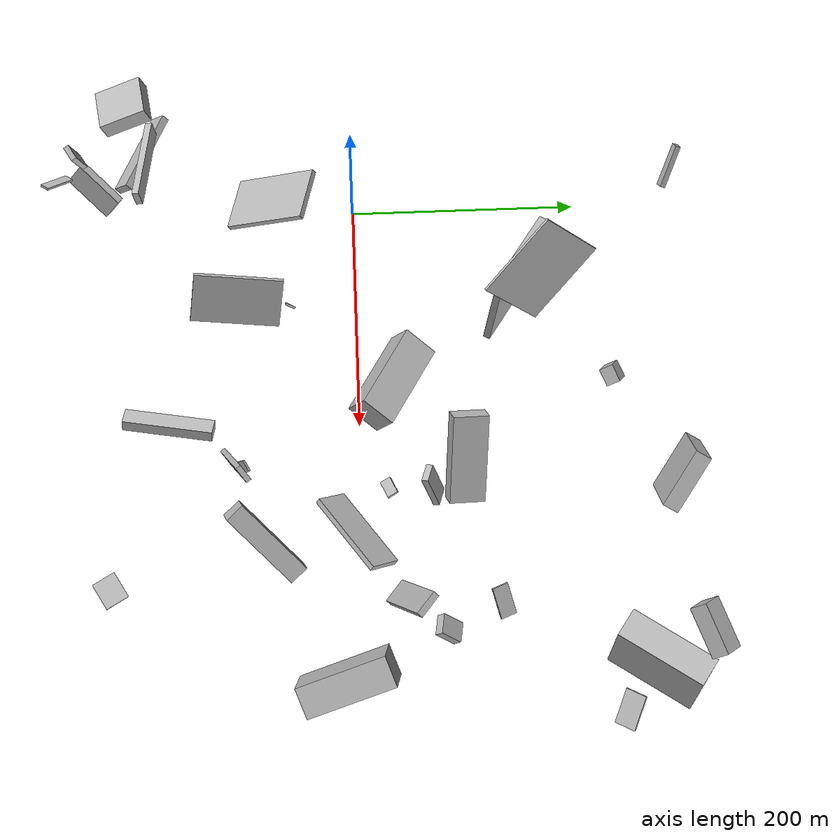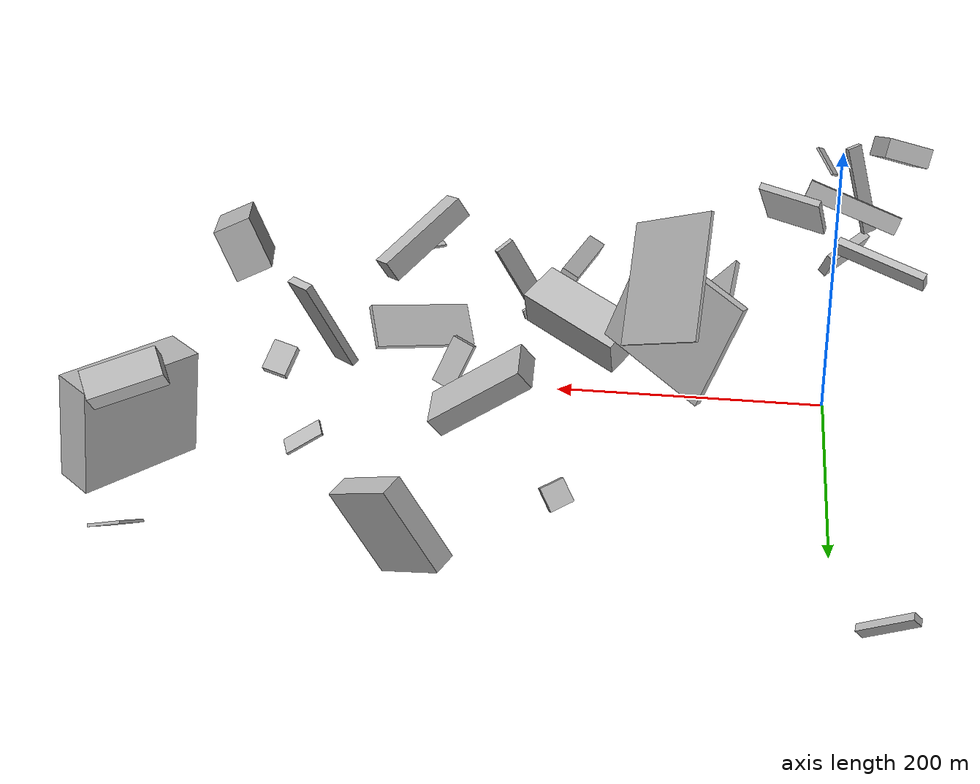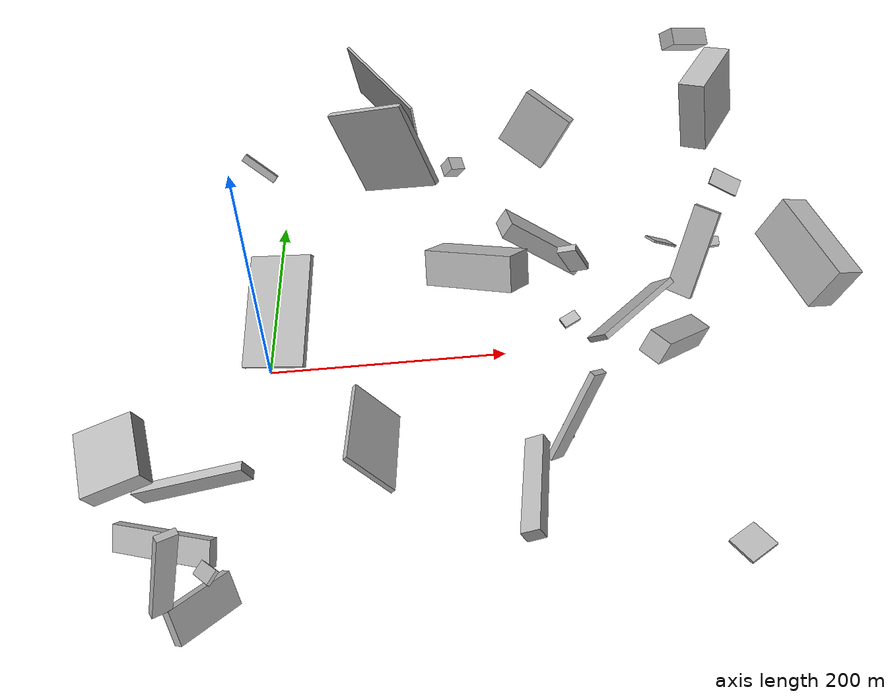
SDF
<sdf version="1.6">
 <world name="default">
  <scene>
   <sky><clouds><speed>12</speed></clouds></sky>
   <ambient>0.4 0.4 0.4 1</ambient>
   <background>0.7 0.7 0.7 1</background>
   <shadows>1</shadows>
  </scene>
  <gravity>0 0 -9.8066</gravity>
  <magnetic_field>6e-06 2.3e-05 -4.2e-05</magnetic_field>
  <physics default="0" name="default_physics" type="ode">
   <ode>
    <solver>
     <type>quick</type>
     <iters>10</iters>
     <sor>1.0</sor>
     <use_dynamic_moi_rescaling>0</use_dynamic_moi_rescaling>
    </solver>
    <constraints>
     <cfm>0</cfm>
     <erp>0.2</erp>
     <contact_max_correcting_vel>100</contact_max_correcting_vel>
     <contact_surface_layer>0.001</contact_surface_layer>
    </constraints>
   </ode>
   <max_step_size>0.004</max_step_size>
   <real_time_factor>1</real_time_factor>
   <real_time_update_rate>250</real_time_update_rate>
  </physics>
  <light name="sun" type="directional">
   <pose>0 0 10 0 0 0</pose>
   <diffuse>0.8 0.8 0.8 1</diffuse>
   <specular>0.2 0.2 0.2 1</specular>
   <attenuation>
    <range>1000</range>
    <constant>0.9</constant>
    <linear>0.01</linear>
    <quadratic>0.001</quadratic>
   </attenuation>
   <direction>-0.5 0.1 -0.9</direction>
  </light>
  <model name="building_1">
   <static>0</static>
   <pose>434.49497128269445 -14.186179135910603 85.19143831351118 -0.2370149337537438 -0.3450023720643535 -2.7749535935866274</pose>
   <link name="link">
    <gravity>0</gravity>
    <pose>0 0 20.0 0 0 0</pose>
    <collision name="collision"><geometry><box><size>28 80 40</size></box></geometry></collision>
    <visual name="visual">
     <cast_shadows>0</cast_shadows>
     <geometry><box><size>28 80 40</size></box></geometry>
     <material>
      <script>
       <uri>model://HANNAS_wall/materials/scripts</uri>
       <uri>model://HANNAS_wall/materials/textures</uri>
       <name>vrc/HANNAS_wall</name>
      </script>
     </material>
    </visual>
   </link>
  </model>
  <model name="building_2">
   <static>0</static>
   <pose>235.31552840122464 -113.89972818426816 41.67680698852957 -2.9713912736952253 -1.092090130730753 0.48728942529996383</pose>
   <link name="link">
    <gravity>0</gravity>
    <pose>0 0 8.0 0 0 0</pose>
    <collision name="collision"><geometry><box><size>80 5 16</size></box></geometry></collision>
    <visual name="visual">
     <cast_shadows>0</cast_shadows>
     <geometry><box><size>80 5 16</size></box></geometry>
     <material>
      <script>
       <uri>model://HANNAS_wall/materials/scripts</uri>
       <uri>model://HANNAS_wall/materials/textures</uri>
       <name>vrc/HANNAS_wall</name>
      </script>
     </material>
    </visual>
   </link>
  </model>
  <model name="building_3">
   <static>0</static>
   <pose>144.98904568941083 49.06381089414938 65.89176471608815 1.0190479072467848 -1.106943464629505 1.5427893497905152</pose>
   <link name="link">
    <gravity>0</gravity>
    <pose>0 0 40.0 0 0 0</pose>
    <collision name="collision"><geometry><box><size>30 32 80</size></box></geometry></collision>
    <visual name="visual">
     <cast_shadows>0</cast_shadows>
     <geometry><box><size>30 32 80</size></box></geometry>
     <material>
      <script>
       <uri>model://HANNAS_wall/materials/scripts</uri>
       <uri>model://HANNAS_wall/materials/textures</uri>
       <name>vrc/HANNAS_wall</name>
      </script>
     </material>
    </visual>
   </link>
  </model>
  <model name="building_4">
   <static>0</static>
   <pose>377.2647908195081 32.53593479418962 65.84364273001236 1.5295639301819817 -0.4415385177111053 -2.2368923309125046</pose>
   <link name="link">
    <gravity>0</gravity>
    <pose>0 0 11.5 0 0 0</pose>
    <collision name="collision"><geometry><box><size>6 80 23</size></box></geometry></collision>
    <visual name="visual">
     <cast_shadows>0</cast_shadows>
     <geometry><box><size>6 80 23</size></box></geometry>
     <material>
      <script>
       <uri>model://HANNAS_wall/materials/scripts</uri>
       <uri>model://HANNAS_wall/materials/textures</uri>
       <name>vrc/HANNAS_wall</name>
      </script>
     </material>
    </visual>
   </link>
  </model>
  <model name="building_5">
   <static>0</static>
   <pose>240.84788508903867 108.41155729994534 43.380096535518575 1.2251468945672663 -0.9223226903673786 0.3525129988771874</pose>
   <link name="link">
    <gravity>0</gravity>
    <pose>0 0 16.0 0 0 0</pose>
    <collision name="collision"><geometry><box><size>16 80 32</size></box></geometry></collision>
    <visual name="visual">
     <cast_shadows>0</cast_shadows>
     <geometry><box><size>16 80 32</size></box></geometry>
     <material>
      <script>
       <uri>model://HANNAS_wall/materials/scripts</uri>
       <uri>model://HANNAS_wall/materials/textures</uri>
       <name>vrc/HANNAS_wall</name>
      </script>
     </material>
    </visual>
   </link>
  </model>
  <model name="building_6">
   <static>0</static>
   <pose>-56.467260672209456 -192.63220698816707 126.3429539231156 0.29416594475149976 0.2953910234091667 -1.3353198900230698</pose>
   <link name="link">
    <gravity>0</gravity>
    <pose>0 0 8.0 0 0 0</pose>
    <collision name="collision"><geometry><box><size>42 37 16</size></box></geometry></collision>
    <visual name="visual">
     <cast_shadows>0</cast_shadows>
     <geometry><box><size>42 37 16</size></box></geometry>
     <material>
      <script>
       <uri>model://HANNAS_wall/materials/scripts</uri>
       <uri>model://HANNAS_wall/materials/textures</uri>
       <name>vrc/HANNAS_wall</name>
      </script>
     </material>
    </visual>
   </link>
  </model>
  <model name="building_7">
   <static>0</static>
   <pose>284.46147267321425 263.1943206387061 42.87626864202687 -0.5755077934036018 -1.067488505862743 0.02901447245922882</pose>
   <link name="link">
    <gravity>0</gravity>
    <pose>0 0 27.5 0 0 0</pose>
    <collision name="collision"><geometry><box><size>61 15 55</size></box></geometry></collision>
    <visual name="visual">
     <cast_shadows>0</cast_shadows>
     <geometry><box><size>61 15 55</size></box></geometry>
     <material>
      <script>
       <uri>model://HANNAS_wall/materials/scripts</uri>
       <uri>model://HANNAS_wall/materials/textures</uri>
       <name>vrc/HANNAS_wall</name>
      </script>
     </material>
    </visual>
   </link>
  </model>
  <model name="building_8">
   <static>0</static>
   <pose>314.99593875941423 -84.62925128360024 76.83879124846382 0.48740580364966163 -0.17358935098141134 2.302441705220504</pose>
   <link name="link">
    <gravity>0</gravity>
    <pose>0 0 9.0 0 0 0</pose>
    <collision name="collision"><geometry><box><size>18 80 18</size></box></geometry></collision>
    <visual name="visual">
     <cast_shadows>0</cast_shadows>
     <geometry><box><size>18 80 18</size></box></geometry>
     <material>
      <script>
       <uri>model://HANNAS_wall/materials/scripts</uri>
       <uri>model://HANNAS_wall/materials/textures</uri>
       <name>vrc/HANNAS_wall</name>
      </script>
     </material>
    </visual>
   </link>
  </model>
  <model name="building_9">
   <static>0</static>
   <pose>-30.794187044282538 287.3744943189598 19.187844578187715 -2.227292597771706 -0.8272748905156652 0.386876679976825</pose>
   <link name="link">
    <gravity>0</gravity>
    <pose>0 0 2.5 0 0 0</pose>
    <collision name="collision"><geometry><box><size>8 40 5</size></box></geometry></collision>
    <visual name="visual">
     <cast_shadows>0</cast_shadows>
     <geometry><box><size>8 40 5</size></box></geometry>
     <material>
      <script>
       <uri>model://HANNAS_wall/materials/scripts</uri>
       <uri>model://HANNAS_wall/materials/textures</uri>
       <name>vrc/HANNAS_wall</name>
      </script>
     </material>
    </visual>
   </link>
  </model>
  <model name="building_10">
   <static>0</static>
   <pose>-2.0008890552816645 -257.45279198847294 99.58637767075058 -0.49703147360637917 0.6161824047449231 2.1820757599649574</pose>
   <link name="link">
    <gravity>0</gravity>
    <pose>0 0 1.0 0 0 0</pose>
    <collision name="collision"><geometry><box><size>29 9 2</size></box></geometry></collision>
    <visual name="visual">
     <cast_shadows>0</cast_shadows>
     <geometry><box><size>29 9 2</size></box></geometry>
     <material>
      <script>
       <uri>model://HANNAS_wall/materials/scripts</uri>
       <uri>model://HANNAS_wall/materials/textures</uri>
       <name>vrc/HANNAS_wall</name>
      </script>
     </material>
    </visual>
   </link>
  </model>
  <model name="building_11">
   <static>0</static>
   <pose>306.1681749463236 -6.494451603366745 43.24109413947054 -0.8101692279165036 -0.20775028206155552 0.6125658509489003</pose>
   <link name="link">
    <gravity>0</gravity>
    <pose>0 0 2.5 0 0 0</pose>
    <collision name="collision"><geometry><box><size>80 33 5</size></box></geometry></collision>
    <visual name="visual">
     <cast_shadows>0</cast_shadows>
     <geometry><box><size>80 33 5</size></box></geometry>
     <material>
      <script>
       <uri>model://HANNAS_wall/materials/scripts</uri>
       <uri>model://HANNAS_wall/materials/textures</uri>
       <name>vrc/HANNAS_wall</name>
      </script>
     </material>
    </visual>
   </link>
  </model>
  <model name="building_12">
   <static>0</static>
   <pose>447.7623647429077 231.96798846051274 10.95086193788369 1.9916204255352645 -0.4206975735859662 1.0247965145696165</pose>
   <link name="link">
    <gravity>0</gravity>
    <pose>0 0 16.0 0 0 0</pose>
    <collision name="collision"><geometry><box><size>20 2 32</size></box></geometry></collision>
    <visual name="visual">
     <cast_shadows>0</cast_shadows>
     <geometry><box><size>20 2 32</size></box></geometry>
     <material>
      <script>
       <uri>model://HANNAS_wall/materials/scripts</uri>
       <uri>model://HANNAS_wall/materials/textures</uri>
       <name>vrc/HANNAS_wall</name>
      </script>
     </material>
    </visual>
   </link>
  </model>
  <model name="building_13">
   <static>0</static>
   <pose>7.580105564681927 -63.413701806840706 125.60442771709634 1.3627190085029843 -0.6379727688464458 1.433969124075271</pose>
   <link name="link">
    <gravity>0</gravity>
    <pose>0 0 23.0 0 0 0</pose>
    <collision name="collision"><geometry><box><size>80 5 46</size></box></geometry></collision>
    <visual name="visual">
     <cast_shadows>0</cast_shadows>
     <geometry><box><size>80 5 46</size></box></geometry>
     <material>
      <script>
       <uri>model://HANNAS_wall/materials/scripts</uri>
       <uri>model://HANNAS_wall/materials/textures</uri>
       <name>vrc/HANNAS_wall</name>
      </script>
     </material>
    </visual>
   </link>
  </model>
  <model name="building_14">
   <static>0</static>
   <pose>84.8804175341088 -145.625063602327 34.587065413763405 -1.7521735940944196 0.816417260420834 -0.197820264196028</pose>
   <link name="link">
    <gravity>0</gravity>
    <pose>0 0 40.0 0 0 0</pose>
    <collision name="collision"><geometry><box><size>47 4 80</size></box></geometry></collision>
    <visual name="visual">
     <cast_shadows>0</cast_shadows>
     <geometry><box><size>47 4 80</size></box></geometry>
     <material>
      <script>
       <uri>model://HANNAS_wall/materials/scripts</uri>
       <uri>model://HANNAS_wall/materials/textures</uri>
       <name>vrc/HANNAS_wall</name>
      </script>
     </material>
    </visual>
   </link>
  </model>
  <model name="building_15">
   <static>0</static>
   <pose>-24.91322655562376 -230.08199977069722 23.69306367281436 0.43797764642638404 -0.9431255225572671 2.0210885921734874</pose>
   <link name="link">
    <gravity>0</gravity>
    <pose>0 0 4.0 0 0 0</pose>
    <collision name="collision"><geometry><box><size>24 47 8</size></box></geometry></collision>
    <visual name="visual">
     <cast_shadows>0</cast_shadows>
     <geometry><box><size>24 47 8</size></box></geometry>
     <material>
      <script>
       <uri>model://HANNAS_wall/materials/scripts</uri>
       <uri>model://HANNAS_wall/materials/textures</uri>
       <name>vrc/HANNAS_wall</name>
      </script>
     </material>
    </visual>
   </link>
  </model>
  <model name="building_16">
   <static>0</static>
   <pose>-27.2380852403225 -239.76031658104716 80.27300715743988 1.3548311332874579 0.13526678503871933 -1.0479162741002663</pose>
   <link name="link">
    <gravity>0</gravity>
    <pose>0 0 6.5 0 0 0</pose>
    <collision name="collision"><geometry><box><size>5 79 13</size></box></geometry></collision>
    <visual name="visual">
     <cast_shadows>0</cast_shadows>
     <geometry><box><size>5 79 13</size></box></geometry>
     <material>
      <script>
       <uri>model://HANNAS_wall/materials/scripts</uri>
       <uri>model://HANNAS_wall/materials/textures</uri>
       <name>vrc/HANNAS_wall</name>
      </script>
     </material>
    </visual>
   </link>
  </model>
  <model name="building_17">
   <static>0</static>
   <pose>396.02689450236755 79.02289823417674 42.371224897638825 -0.3358091212555764 -0.7987834155492514 1.66247464656209</pose>
   <link name="link">
    <gravity>0</gravity>
    <pose>0 0 11.5 0 0 0</pose>
    <collision name="collision"><geometry><box><size>8 18 23</size></box></geometry></collision>
    <visual name="visual">
     <cast_shadows>0</cast_shadows>
     <geometry><box><size>8 18 23</size></box></geometry>
     <material>
      <script>
       <uri>model://HANNAS_wall/materials/scripts</uri>
       <uri>model://HANNAS_wall/materials/textures</uri>
       <name>vrc/HANNAS_wall</name>
      </script>
     </material>
    </visual>
   </link>
  </model>
  <model name="building_18">
   <static>0</static>
   <pose>345.3456184025019 -221.2426589263006 20.82502502922869 3.140514826638614 0.017145693630861984 2.0937536692409187</pose>
   <link name="link">
    <gravity>0</gravity>
    <pose>0 0 1.0 0 0 0</pose>
    <collision name="collision"><geometry><box><size>22 25 2</size></box></geometry></collision>
    <visual name="visual">
     <cast_shadows>0</cast_shadows>
     <geometry><box><size>22 25 2</size></box></geometry>
     <material>
      <script>
       <uri>model://HANNAS_wall/materials/scripts</uri>
       <uri>model://HANNAS_wall/materials/textures</uri>
       <name>vrc/HANNAS_wall</name>
      </script>
     </material>
    </visual>
   </link>
  </model>
  <model name="building_19">
   <static>0</static>
   <pose>442.8855694219915 237.10401016110058 101.14309344454605 -1.71142858707331 -0.051660406455636354 0.9767216771367254</pose>
   <link name="link">
    <gravity>0</gravity>
    <pose>0 0 13.0 0 0 0</pose>
    <collision name="collision"><geometry><box><size>80 71 26</size></box></geometry></collision>
    <visual name="visual">
     <cast_shadows>0</cast_shadows>
     <geometry><box><size>80 71 26</size></box></geometry>
     <material>
      <script>
       <uri>model://HANNAS_wall/materials/scripts</uri>
       <uri>model://HANNAS_wall/materials/textures</uri>
       <name>vrc/HANNAS_wall</name>
      </script>
     </material>
    </visual>
   </link>
  </model>
  <model name="building_20">
   <static>0</static>
   <pose>259.575400213031 56.84549188116122 66.11533810742267 -2.7358852352599525 -0.339208011603624 -0.31347411014435395</pose>
   <link name="link">
    <gravity>0</gravity>
    <pose>0 0 18.0 0 0 0</pose>
    <collision name="collision"><geometry><box><size>17 6 36</size></box></geometry></collision>
    <visual name="visual">
     <cast_shadows>0</cast_shadows>
     <geometry><box><size>17 6 36</size></box></geometry>
     <material>
      <script>
       <uri>model://HANNAS_wall/materials/scripts</uri>
       <uri>model://HANNAS_wall/materials/textures</uri>
       <name>vrc/HANNAS_wall</name>
      </script>
     </material>
    </visual>
   </link>
  </model>
  <model name="building_21">
   <static>0</static>
   <pose>-50.107805251587465 -183.1825508311739 43.517008058654085 -2.510085091545104 0.19989722161144707 2.716995879501054</pose>
   <link name="link">
    <gravity>0</gravity>
    <pose>0 0 9.5 0 0 0</pose>
    <collision name="collision"><geometry><box><size>80 7 19</size></box></geometry></collision>
    <visual name="visual">
     <cast_shadows>0</cast_shadows>
     <geometry><box><size>80 7 19</size></box></geometry>
     <material>
      <script>
       <uri>model://HANNAS_wall/materials/scripts</uri>
       <uri>model://HANNAS_wall/materials/textures</uri>
       <name>vrc/HANNAS_wall</name>
      </script>
     </material>
    </visual>
   </link>
  </model>
  <model name="building_22">
   <static>0</static>
   <pose>418.2813669408943 277.2687780819213 152.05971058706393 -2.795495318543835 -0.8283039983865563 1.7098454792681417</pose>
   <link name="link">
    <gravity>0</gravity>
    <pose>0 0 9.5 0 0 0</pose>
    <collision name="collision"><geometry><box><size>17 45 19</size></box></geometry></collision>
    <visual name="visual">
     <cast_shadows>0</cast_shadows>
     <geometry><box><size>17 45 19</size></box></geometry>
     <material>
      <script>
       <uri>model://HANNAS_wall/materials/scripts</uri>
       <uri>model://HANNAS_wall/materials/textures</uri>
       <name>vrc/HANNAS_wall</name>
      </script>
     </material>
    </visual>
   </link>
  </model>
  <model name="building_23">
   <static>0</static>
   <pose>178.3834749649845 226.35547804647877 45.66056139310675 1.1852690439314202 0.5341277036131441 -1.3247216618703743</pose>
   <link name="link">
    <gravity>0</gravity>
    <pose>0 0 8.0 0 0 0</pose>
    <collision name="collision"><geometry><box><size>13 16 16</size></box></geometry></collision>
    <visual name="visual">
     <cast_shadows>0</cast_shadows>
     <geometry><box><size>13 16 16</size></box></geometry>
     <material>
      <script>
       <uri>model://HANNAS_wall/materials/scripts</uri>
       <uri>model://HANNAS_wall/materials/textures</uri>
       <name>vrc/HANNAS_wall</name>
      </script>
     </material>
    </visual>
   </link>
  </model>
  <model name="building_24">
   <static>0</static>
   <pose>259.8271540217493 24.94116763199436 10.446209166791727 0.2818378696891253 -0.21128714921888553 0.4177925935365032</pose>
   <link name="link">
    <gravity>0</gravity>
    <pose>0 0 1.5 0 0 0</pose>
    <collision name="collision"><geometry><box><size>16 10 3</size></box></geometry></collision>
    <visual name="visual">
     <cast_shadows>0</cast_shadows>
     <geometry><box><size>16 10 3</size></box></geometry>
     <material>
      <script>
       <uri>model://HANNAS_wall/materials/scripts</uri>
       <uri>model://HANNAS_wall/materials/textures</uri>
       <name>vrc/HANNAS_wall</name>
      </script>
     </material>
    </visual>
   </link>
  </model>
  <model name="building_25">
   <static>0</static>
   <pose>-20.049556294958066 -180.53156826402585 81.76642748325337 0.24125989709236678 -0.33673056918689187 -0.13262486727360065</pose>
   <link name="link">
    <gravity>0</gravity>
    <pose>0 0 7.5 0 0 0</pose>
    <collision name="collision"><geometry><box><size>80 6 15</size></box></geometry></collision>
    <visual name="visual">
     <cast_shadows>0</cast_shadows>
     <geometry><box><size>80 6 15</size></box></geometry>
     <material>
      <script>
       <uri>model://HANNAS_wall/materials/scripts</uri>
       <uri>model://HANNAS_wall/materials/textures</uri>
       <name>vrc/HANNAS_wall</name>
      </script>
     </material>
    </visual>
   </link>
  </model>
  <model name="building_26">
   <static>0</static>
   <pose>108.23018737263709 138.3919175044674 129.80760086625708 -1.7650663696078424 -1.1991777590047774 2.787357277243833</pose>
   <link name="link">
    <gravity>0</gravity>
    <pose>0 0 3.0 0 0 0</pose>
    <collision name="collision"><geometry><box><size>80 80 6</size></box></geometry></collision>
    <visual name="visual">
     <cast_shadows>0</cast_shadows>
     <geometry><box><size>80 80 6</size></box></geometry>
     <material>
      <script>
       <uri>model://HANNAS_wall/materials/scripts</uri>
       <uri>model://HANNAS_wall/materials/textures</uri>
       <name>vrc/HANNAS_wall</name>
      </script>
     </material>
    </visual>
   </link>
  </model>
  <model name="building_27">
   <static>0</static>
   <pose>194.93046847087814 -207.14932789259342 32.216322250243984 -1.5267225538643616 -0.48758072292267063 -0.19300566247214135</pose>
   <link name="link">
    <gravity>0</gravity>
    <pose>0 0 40.0 0 0 0</pose>
    <collision name="collision"><geometry><box><size>15 11 80</size></box></geometry></collision>
    <visual name="visual">
     <cast_shadows>0</cast_shadows>
     <geometry><box><size>15 11 80</size></box></geometry>
     <material>
      <script>
       <uri>model://HANNAS_wall/materials/scripts</uri>
       <uri>model://HANNAS_wall/materials/textures</uri>
       <name>vrc/HANNAS_wall</name>
      </script>
     </material>
    </visual>
   </link>
  </model>
  <model name="building_28">
   <static>0</static>
   <pose>232.5732337216998 -106.50472308552051 16.36137500964173 -1.9945632354466827 -0.42308654973278115 -0.8751688818182938</pose>
   <link name="link">
    <gravity>0</gravity>
    <pose>0 0 5.5 0 0 0</pose>
    <collision name="collision"><geometry><box><size>2 12 11</size></box></geometry></collision>
    <visual name="visual">
     <cast_shadows>0</cast_shadows>
     <geometry><box><size>2 12 11</size></box></geometry>
     <material>
      <script>
       <uri>model://HANNAS_wall/materials/scripts</uri>
       <uri>model://HANNAS_wall/materials/textures</uri>
       <name>vrc/HANNAS_wall</name>
      </script>
     </material>
    </visual>
   </link>
  </model>
  <model name="building_29">
   <static>0</static>
   <pose>86.39501477959985 -63.08772750076088 10.039004340323515 2.042254133395832 -0.3446527093695446 2.585656739572553</pose>
   <link name="link">
    <gravity>0</gravity>
    <pose>0 0 5.0 0 0 0</pose>
    <collision name="collision"><geometry><box><size>2 2 10</size></box></geometry></collision>
    <visual name="visual">
     <cast_shadows>0</cast_shadows>
     <geometry><box><size>2 2 10</size></box></geometry>
     <material>
      <script>
       <uri>model://HANNAS_wall/materials/scripts</uri>
       <uri>model://HANNAS_wall/materials/textures</uri>
       <name>vrc/HANNAS_wall</name>
      </script>
     </material>
    </visual>
   </link>
  </model>
  <model name="building_30">
   <static>0</static>
   <pose>361.7714224161701 127.64437265345991 13.831949666692061 -1.154246414179611 1.0243595247073012 -2.3675233733295973</pose>
   <link name="link">
    <gravity>0</gravity>
    <pose>0 0 7.5 0 0 0</pose>
    <collision name="collision"><geometry><box><size>2 29 15</size></box></geometry></collision>
    <visual name="visual">
     <cast_shadows>0</cast_shadows>
     <geometry><box><size>2 29 15</size></box></geometry>
     <material>
      <script>
       <uri>model://HANNAS_wall/materials/scripts</uri>
       <uri>model://HANNAS_wall/materials/textures</uri>
       <name>vrc/HANNAS_wall</name>
      </script>
     </material>
    </visual>
   </link>
  </model>
  <model name="building_31">
   <static>0</static>
   <pose>113.83547580451389 178.14681652827755 134.62424115822097 0.443876279711747 0.4170175832382092 -0.8135811975985447</pose>
   <link name="link">
    <gravity>0</gravity>
    <pose>0 0 40.0 0 0 0</pose>
    <collision name="collision"><geometry><box><size>78 2 80</size></box></geometry></collision>
    <visual name="visual">
     <cast_shadows>0</cast_shadows>
     <geometry><box><size>78 2 80</size></box></geometry>
     <material>
      <script>
       <uri>model://HANNAS_wall/materials/scripts</uri>
       <uri>model://HANNAS_wall/materials/textures</uri>
       <name>vrc/HANNAS_wall</name>
      </script>
     </material>
    </visual>
   </link>
  </model>
 </world>
</sdf>
